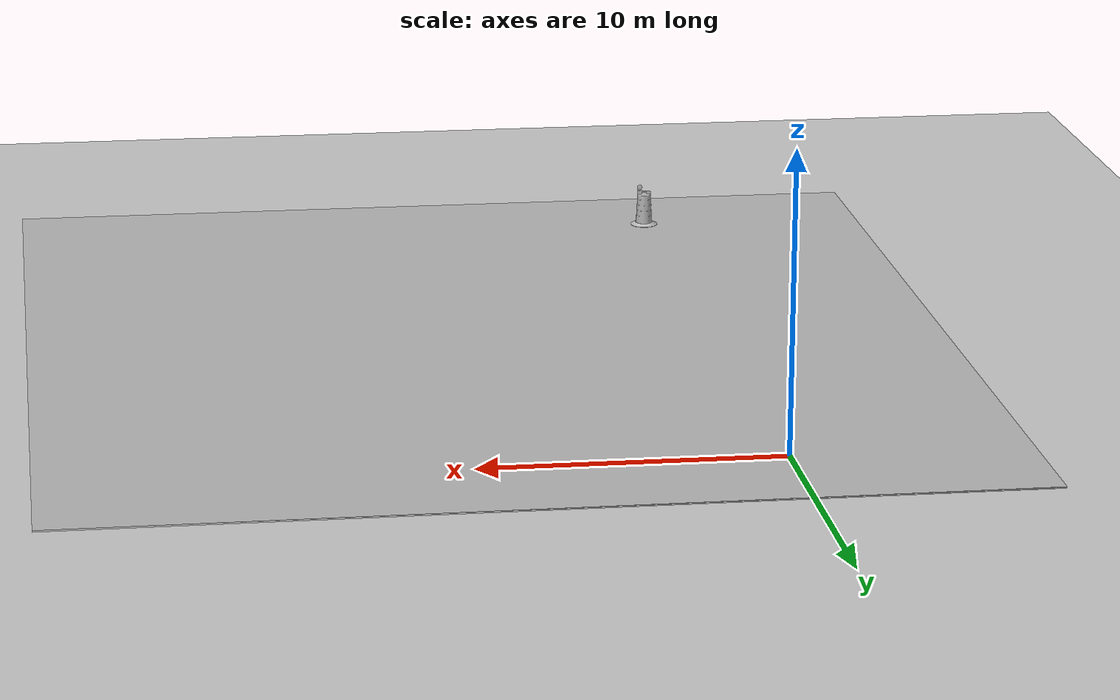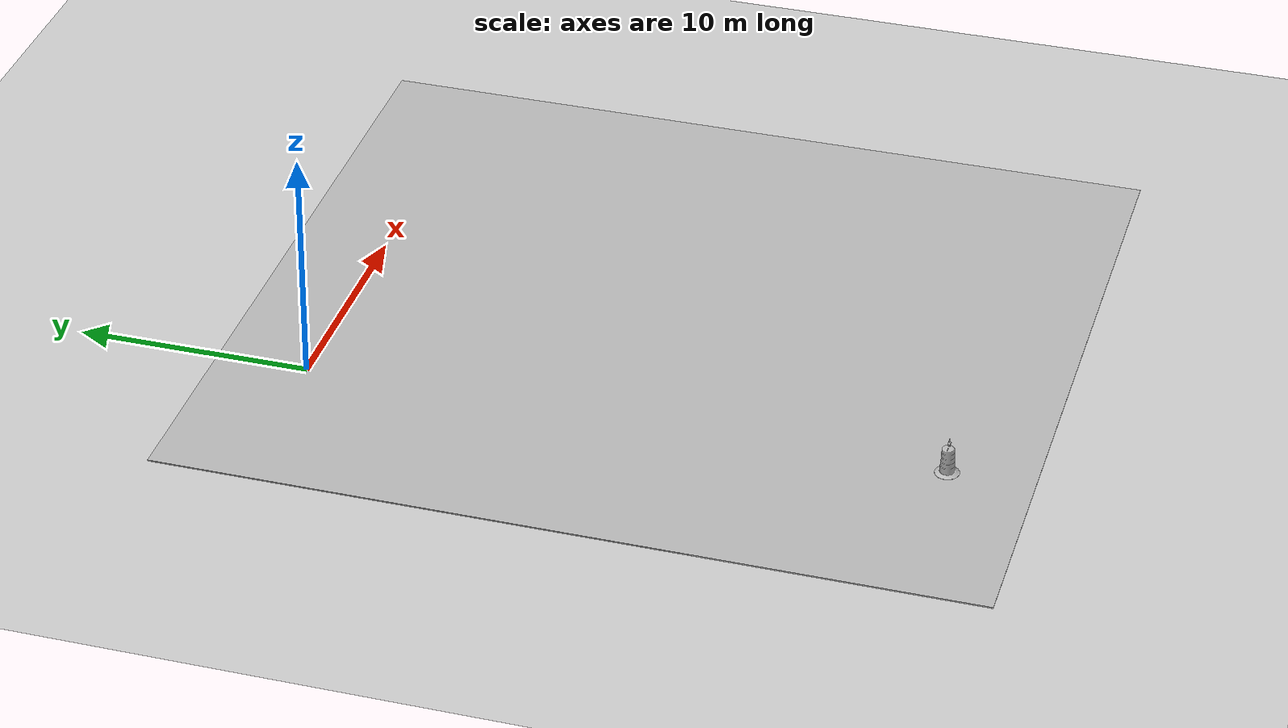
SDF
<sdf version="1.7">
 <world name="default">
  <light name="sun" type="directional">
   <pose>0 0 10 0 -0 0</pose>
   <diffuse>0.8 0.8 0.8 1</diffuse>
   <specular>0.2 0.2 0.2 1</specular>
   <attenuation>
    <range>1000</range>
    <constant>0.9</constant>
    <linear>0.01</linear>
    <quadratic>0.001</quadratic>
   </attenuation>
   <direction>-0.5 0.1 -0.9</direction>
   <spot><inner_angle>0</inner_angle><outer_angle>0</outer_angle><falloff>0</falloff></spot>
  </light>
  <model name="ground_plane">
   <static>1</static>
   <link name="link">
    <collision name="collision">
     <geometry><plane><normal>0 0 1</normal><size>100 100</size></plane></geometry>
     <surface>
      <contact><collide_bitmask>65535</collide_bitmask></contact>
      <friction><ode><mu>100</mu><mu2>50</mu2></ode></friction>
     </surface>
    </collision>
    <visual name="visual">
     <cast_shadows>0</cast_shadows>
     <geometry><plane><normal>0 0 1</normal><size>100 100</size></plane></geometry>
     <material>
      <script><uri>file://media/materials/scripts/gazebo.material</uri><name>Gazebo/Grey</name></script>
     </material>
    </visual>
   </link>
  </model>
  <gravity>0 0 -9.8</gravity>
  <magnetic_field>6e-06 2.3e-05 -4.2e-05</magnetic_field>
  <atmosphere type="adiabatic"/>
  <physics type="ode">
   <max_step_size>0.001</max_step_size>
   <real_time_factor>1</real_time_factor>
   <real_time_update_rate>1000</real_time_update_rate>
  </physics>
  <scene><ambient>0.4 0.4 0.4 1</ambient><background>0.7 0.7 0.7 1</background><shadows>1</shadows></scene>
  <spherical_coordinates>
   <surface_model>EARTH_WGS84</surface_model>
   <latitude_deg>0</latitude_deg>
   <longitude_deg>0</longitude_deg>
   <elevation>0</elevation>
   <heading_deg>0</heading_deg>
  </spherical_coordinates>
  <model name="igvc_track9">
   <static>1</static>
   <link name="link">
    <collision name="collision"><geometry><box><size>31.707 34.5174 0.0398247</size></box></geometry></collision>
    <visual name="visual">
     <cast_shadows>0</cast_shadows>
     <geometry><box><size>31.707 34.5174 0.0398247</size></box></geometry>
     <material>
      <script>
       <uri>model://igvc_track9/materials/scripts</uri>
       <uri>model://igvc_track9/materials/textures</uri>
       <name>vrc/ground</name>
      </script>
     </material>
    </visual>
   </link>
   <link name="link2">
    <collision name="collision"><geometry><box><size>31.707 34.5174 0.0398247</size></box></geometry></collision>
    <visual name="visual">
     <cast_shadows>0</cast_shadows>
     <geometry><box><size>31.707 34.5174 0.0557547</size></box></geometry>
     <material>
      <script>
       <uri>model://igvc_track9/materials/scripts</uri>
       <uri>model://igvc_track9/materials/textures</uri>
       <name>vrc/track</name>
      </script>
     </material>
    </visual>
   </link>
   <pose>7.9323 -13.3452 0 0 -0 0</pose>
  </model>
  <model name="Construction Barrel">
   <link name="link">
    <inertial>
     <pose>0 0 0.4 0 -0 0</pose>
     <mass>500</mass>
     <inertia><ixx>51.2096</ixx><iyy>51.2096</iyy><izz>25</izz><ixy>0</ixy><ixz>0</ixz><iyz>0</iyz></inertia>
    </inertial>
    <collision name="collision">
     <geometry><mesh><uri>model://construction_barrel/meshes/construction_barrel.dae</uri></mesh></geometry>
    </collision>
    <visual name="visual">
     <geometry><mesh><uri>model://construction_barrel/meshes/construction_barrel.dae</uri></mesh></geometry>
    </visual>
   </link>
   <pose>0.253379 -27.0094 0.019912 2e-06 0 -0.003231</pose>
  </model>
 </world>
</sdf>
